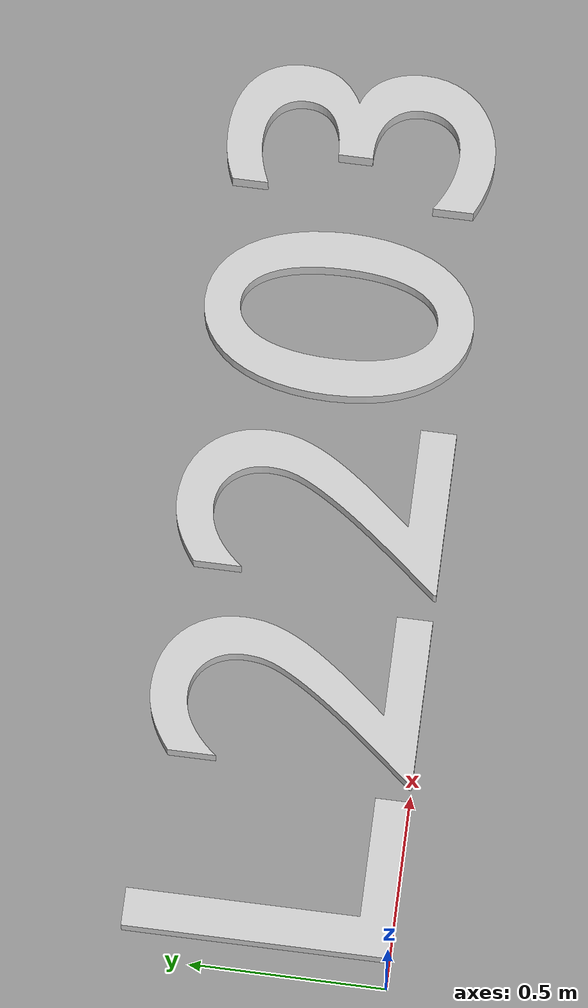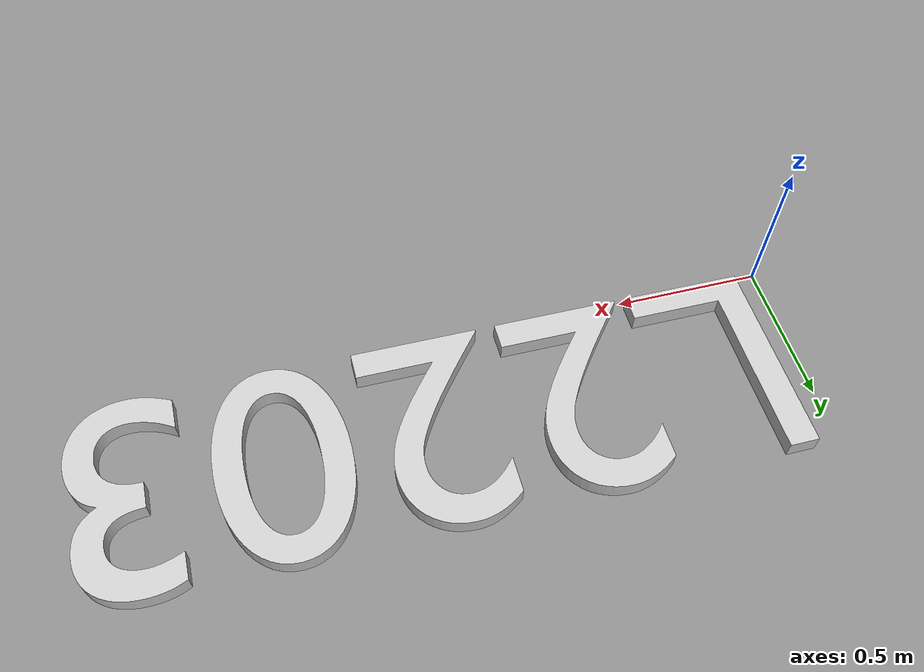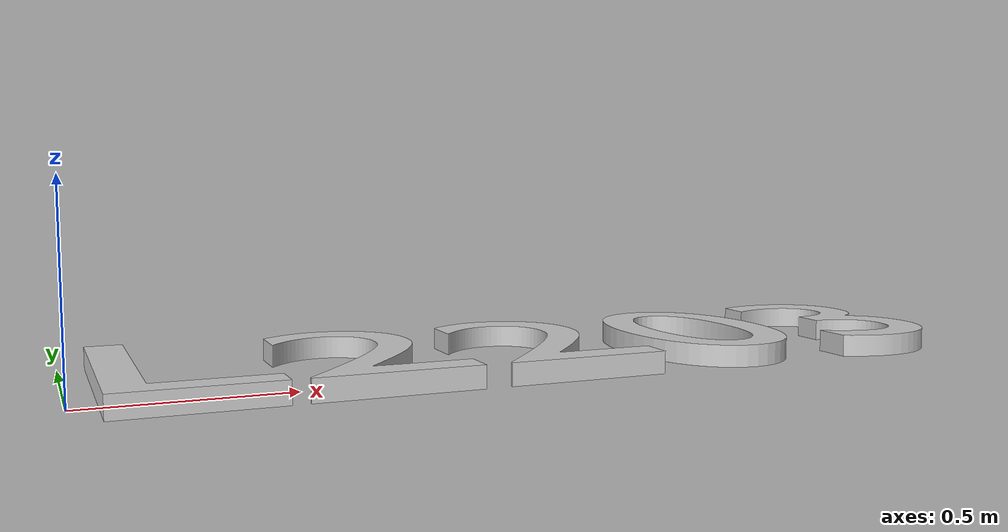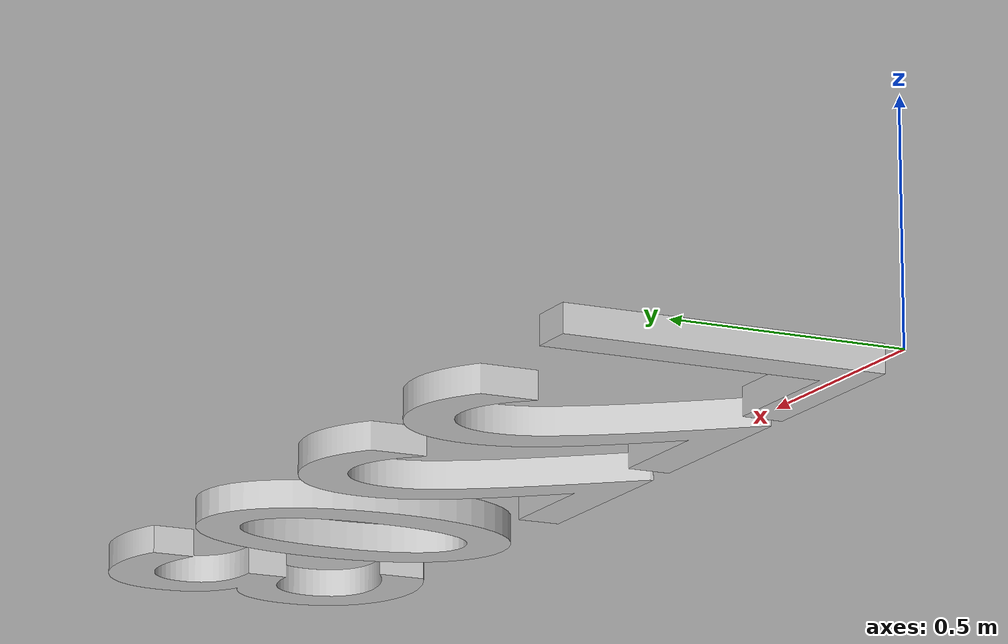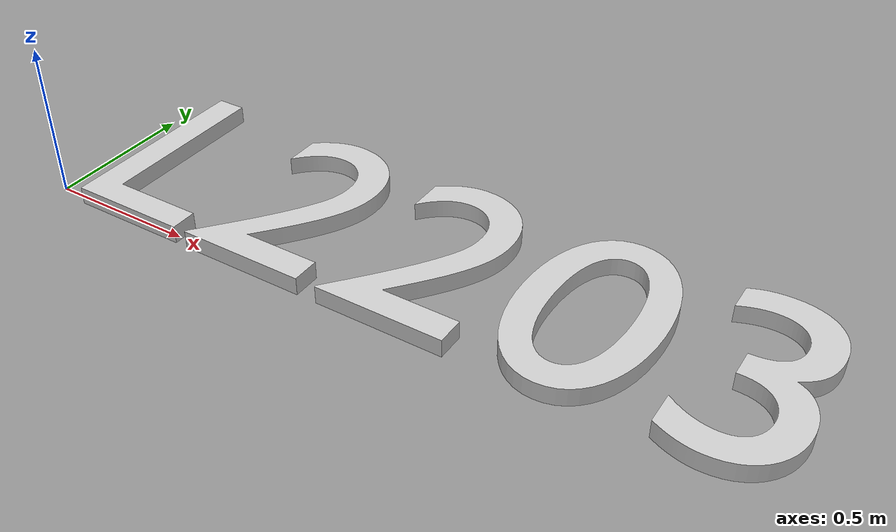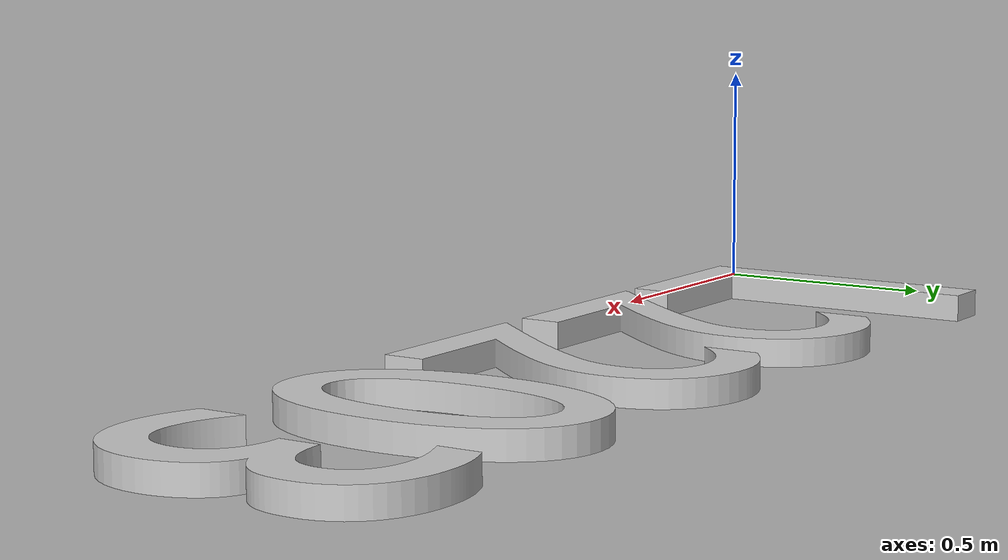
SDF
<?xml version='1.0'?>
    <sdf version='1.6'>
      <model name='L2203'>
        <link name='link'>
          <visual name='visual'>
            <geometry>
              <mesh>
                <uri>model://localros/text_3d_models/L2203/L2203.dae</uri>
              </mesh>
            </geometry>
          </visual>
        </link>
      </model>
    </sdf>
